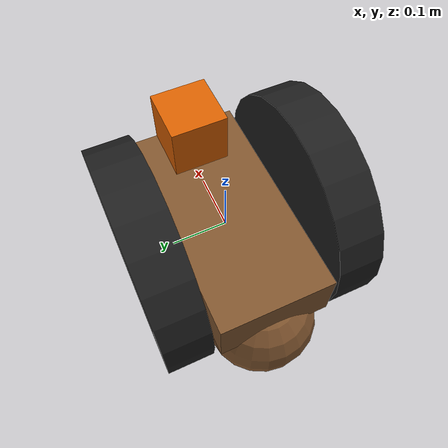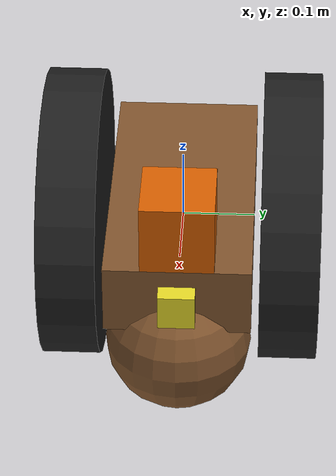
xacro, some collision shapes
<?xml version='1.0'?>

<robot name="my_robot" xmlns:xacro="http://www.ros.org/wiki/xacro">

<xacro:include filename="$(find my_robot)/urdf/my_robot.gazebo" />

  <link name="robot_footprint"></link>

  <joint name="robot_footprint_joint" type="fixed">
    <origin xyz="0 0 0" rpy="0 0 0" />
    <parent link="robot_footprint"/>
    <child link="chassis" />
  </joint>

  <link name='chassis'>
    <pose>0 0 0.2 0 0 0</pose>

    <inertial>
      <mass value="15.0"/>
      <origin xyz="0.0 0 0" rpy=" 0 0 0"/>
      <inertia
          ixx="0.1" ixy="0" ixz="0"
          iyy="0.1" iyz="0"
          izz="0.1"
      />
    </inertial>

    <collision name='collision'>
      <origin xyz="0 0 0" rpy=" 0 0 0"/>
      <geometry>
        <box size=".4 .2 .1"/>
      </geometry>
    </collision>

    <visual name='chassis_visual'>
      <origin xyz="0 0 0" rpy=" 0 0 0"/>
      <geometry>
        <box size=".4 .2 .1"/>
      </geometry>
    </visual>

    <collision name='back_caster_collision'>
      <origin xyz="-0.15 0 -0.1" rpy=" 0 0 0"/>
      <geometry>
        <sphere radius="0.099"/>
      </geometry>
    </collision>

    <visual name='back_caster_visual'>
      <origin xyz="-0.15 0 -0.1" rpy=" 0 0 0"/>
      <geometry>
        <sphere radius="0.1"/>
      </geometry>
    </visual>

    <collision name='front_caster_collision'>
      <origin xyz="0.15 0 -0.099" rpy=" 0 0 0"/>
      <geometry>
        <sphere radius="0.1"/>
      </geometry>
    </collision>

    <visual name='front_caster_visual'>
      <origin xyz="0.15 0 -0.1" rpy=" 0 0 0"/>
      <geometry>
        <sphere radius="0.1"/>
      </geometry>
    </visual>

  </link>

  <link name="left_wheel">

    <inertial>
      <mass value="5.0"/>
      <origin xyz="0 0 0" rpy=" 0 1.5707 1.5707"/>
      <inertia
          ixx="0.1" ixy="0" ixz="0"
          iyy="0.1" iyz="0"
          izz="0.1"
      />
    </inertial>

    <visual>
      <origin xyz="0 0 0" rpy="0 1.5707 1.5707"/>
      <geometry>
        <cylinder length="0.08" radius="0.2"/>
      </geometry>
    </visual>

    <collision>
      <origin xyz="0 0 0" rpy="0 1.5707 1.5707"/>
      <geometry>
        <cylinder length="0.08" radius="0.2"/>
      </geometry>
    </collision>

  </link>
  <joint type="continuous" name="left_wheel_hinge">
    <origin xyz="0 0.15 0" rpy="0 0 0"/>
    <child link="left_wheel"/>
    <parent link="chassis"/>
    <axis xyz="0 1 0" rpy="0 0 0"/>
    <limit effort="10000" velocity="1000"/>
    <dynamics damping="1.0" friction="1.0"/>
  </joint>

  <link name="right_wheel">

    <inertial>
      <mass value="5.0"/>
      <origin xyz="0 0 0" rpy=" 0 1.5707 1.5707"/>
      <inertia
          ixx="0.1" ixy="0" ixz="0"
          iyy="0.1" iyz="0"
          izz="0.1"
      />
    </inertial>

    <visual>
      <origin xyz="0 0 0" rpy="0 1.5707 1.5707"/>
      <geometry>
        <cylinder length="0.08" radius="0.2"/>
      </geometry>
    </visual>

    <collision>
      <origin xyz="0 0 0" rpy="0 1.5707 1.5707"/>
      <geometry>
        <cylinder length="0.08" radius="0.2"/>
      </geometry>
    </collision>

  </link>
  <joint type="continuous" name="right_wheel_hinge">
    <origin xyz="0 -0.15 0" rpy="0 0 0"/>
    <child link="right_wheel"/>
    <parent link="chassis"/>
    <axis xyz="0 1 0" rpy="0 0 0"/>
    <limit effort="10000" velocity="1000"/>
    <dynamics damping="1.0" friction="1.0"/>
   </joint>

  <link name="camera">
    <inertial>
      <mass value="0.10"/>
      <origin xyz="0.05 0.05 0.05" rpy=" 0 0 0"/>
      <inertia
          ixx="1e-6" ixy="0" ixz="0"
          iyy="1e-6" iyz="0"
          izz="1e-6"
      />
    </inertial>

    <visual>
      <origin xyz="0 0 0" rpy="0 0 0"/>
      <geometry>
        <box size="0.05 0.05 0.05"/>
      </geometry>
    </visual>

    <collision>
      <origin xyz="0 0 0" rpy="0 0 0"/>
      <geometry>
        <box size="0.05 0.05 0.05"/>
      </geometry>
    </collision>

  </link>

  <joint name="camera_joint" type="fixed">
    <origin xyz="0.2 0 0" rpy="0 0 0"/>
    <parent link="chassis"/>
    <child link="camera"/>
    <!--axis xyz="0 1 0" rpy="0 0 0"/-->
  </joint>

  <link name="hokuyo">
    <inertial>
      <mass value="1e-5"/>
      <origin xyz="0.0 0.0 0.0" rpy=" 0 0 0"/>
      <inertia
          ixx="1e-6" ixy="0" ixz="0"
          iyy="1e-6" iyz="0"
          izz="1e-6"
      />
    </inertial>

    <visual>
      <origin xyz="0 0 0" rpy="0 0 0"/>
      <geometry>
        <mesh filename="package://my_robot/meshes/hokuyo.dae"/>
      </geometry>
    </visual>

    <collision>
      <origin xyz="0 0 0" rpy="0 0 0"/>
      <geometry>
        <box size="0.1 0.1 0.1"/>
      </geometry>
    </collision>

  </link>

 <joint type="fixed" name="hokuyo_joint">
    <origin xyz="0.15 0 0.1" rpy="0 0 0"/>
    <child link="hokuyo"/>
    <parent link="chassis"/>
    <axis xyz="0 1 0" rpy="0 0 0"/>
   </joint>

  <joint name="camera_optical_joint" type="fixed">
    <origin xyz="0 0 0" rpy="-1.5707 0 -1.5707"/>
    <parent link="camera"/>
    <child link="camera_link_optical"/>
  </joint>

<link name="camera_link_optical">

  </link>

 <gazebo reference="left_wheel">
 <material>Gazebo/Black</material>
 </gazebo>

 <gazebo reference="right_wheel">
 <material>Gazebo/Black</material>
 </gazebo>

 <gazebo reference="chassis">
 <material>Gazebo/Brown</material>
 </gazebo>

 <gazebo reference="camera">
 <material>Gazebo/Yellow</material>
 </gazebo>

 <gazebo reference="camera_link_optical">
 <material>Gazebo/Blue</material>
 </gazebo>

</robot>
